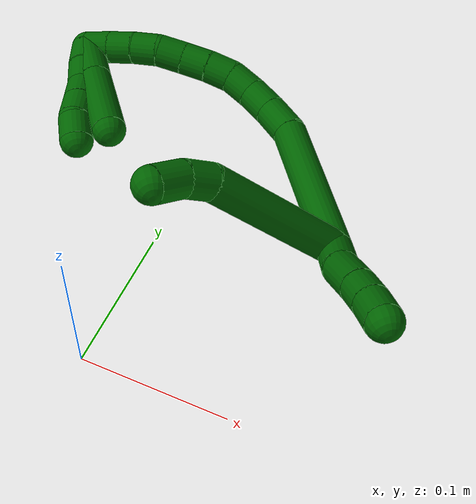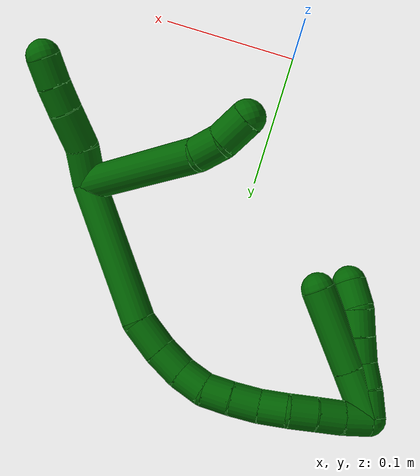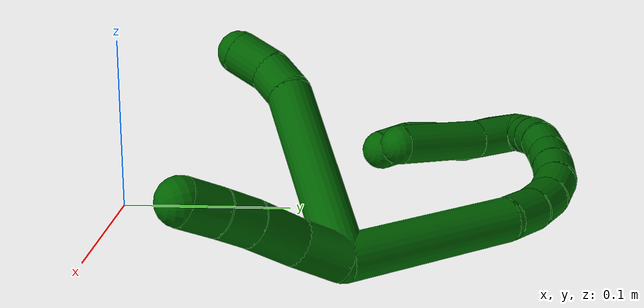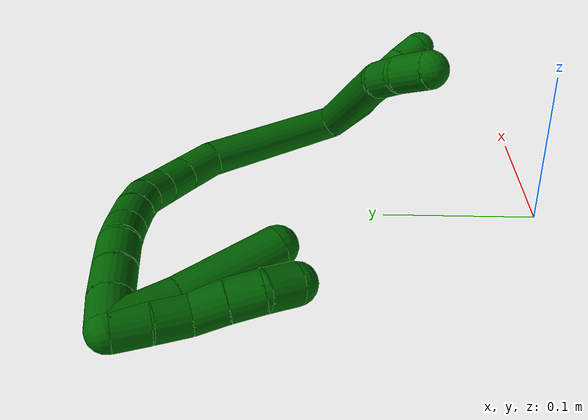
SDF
<sdf version="1.7">
 <world name="default">
  <model name="6">
   <static>0</static>
   <link name="6">
    <collision name="collision-cylinder-e_1_2_8">
     <pose>-0.052342 -0.002921 0.009094 0.310812 -1.3903 -0.259862</pose>
     <geometry><cylinder><radius>0.0125</radius><length>0.106413</length></cylinder></geometry>
     <surface>
      <friction><ode><mu>1.16</mu><mu2>1.16</mu2><slip1>0</slip1><slip2>0</slip2></ode></friction>
      <contact><ode><kp>1e+06</kp><kd>1</kd><max_vel>0</max_vel><min_depth>0.001</min_depth></ode></contact>
     </surface>
    </collision>
    <visual name="visual-cylinder-e_1_2_8">
     <pose>-0.052342 -0.002921 0.009094 0.310812 -1.3903 -0.259862</pose>
     <geometry><cylinder><radius>0.0125</radius><length>0.106413</length></cylinder></geometry>
     <material><ambient>0 0.392157 0.003922 1</ambient></material>
    </visual>
    <collision name="collision-cylinder-e_2_8_9">
     <pose>-0.114614 -0.004176 0.017561 -1.93065 -1.39344 1.75926</pose>
     <geometry><cylinder><radius>0.0125</radius><length>0.020177</length></cylinder></geometry>
     <surface>
      <friction><ode><mu>1.16</mu><mu2>1.16</mu2><slip1>0</slip1><slip2>0</slip2></ode></friction>
      <contact><ode><kp>1e+06</kp><kd>1</kd><max_vel>0</max_vel><min_depth>0.001</min_depth></ode></contact>
     </surface>
    </collision>
    <visual name="visual-cylinder-e_2_8_9">
     <pose>-0.114614 -0.004176 0.017561 -1.93065 -1.39344 1.75926</pose>
     <geometry><cylinder><radius>0.0125</radius><length>0.020177</length></cylinder></geometry>
     <material><ambient>0 0.392157 0.003922 1</ambient></material>
    </visual>
    <collision name="collision-cylinder-e_3_9_6">
     <pose>-0.135205 0.000387 0.013064 -2.49892 -1.14504 2.18814</pose>
     <geometry><cylinder><radius>0.0125</radius><length>0.02341</length></cylinder></geometry>
     <surface>
      <friction><ode><mu>1.16</mu><mu2>1.16</mu2><slip1>0</slip1><slip2>0</slip2></ode></friction>
      <contact><ode><kp>1e+06</kp><kd>1</kd><max_vel>0</max_vel><min_depth>0.001</min_depth></ode></contact>
     </surface>
    </collision>
    <visual name="visual-cylinder-e_3_9_6">
     <pose>-0.135205 0.000387 0.013064 -2.49892 -1.14504 2.18814</pose>
     <geometry><cylinder><radius>0.0125</radius><length>0.02341</length></cylinder></geometry>
     <material><ambient>0 0.392157 0.003922 1</ambient></material>
    </visual>
    <collision name="collision-cylinder-e_1_2_10">
     <pose>-0.005702 -0.003578 -0.012521 2.86325 -0.412745 -1.96224</pose>
     <geometry><cylinder><radius>0.0125</radius><length>0.028432</length></cylinder></geometry>
     <surface>
      <friction><ode><mu>1.16</mu><mu2>1.16</mu2><slip1>0</slip1><slip2>0</slip2></ode></friction>
      <contact><ode><kp>1e+06</kp><kd>1</kd><max_vel>0</max_vel><min_depth>0.001</min_depth></ode></contact>
     </surface>
    </collision>
    <visual name="visual-cylinder-e_1_2_10">
     <pose>-0.005702 -0.003578 -0.012521 2.86325 -0.412745 -1.96224</pose>
     <geometry><cylinder><radius>0.0125</radius><length>0.028432</length></cylinder></geometry>
     <material><ambient>0 0.392157 0.003922 1</ambient></material>
    </visual>
    <collision name="collision-cylinder-e_2_10_11">
     <pose>-0.015234 -0.013719 -0.038088 2.67546 -0.256416 -0.995023</pose>
     <geometry><cylinder><radius>0.0125</radius><length>0.030194</length></cylinder></geometry>
     <surface>
      <friction><ode><mu>1.16</mu><mu2>1.16</mu2><slip1>0</slip1><slip2>0</slip2></ode></friction>
      <contact><ode><kp>1e+06</kp><kd>1</kd><max_vel>0</max_vel><min_depth>0.001</min_depth></ode></contact>
     </surface>
    </collision>
    <visual name="visual-cylinder-e_2_10_11">
     <pose>-0.015234 -0.013719 -0.038088 2.67546 -0.256416 -0.995023</pose>
     <geometry><cylinder><radius>0.0125</radius><length>0.030194</length></cylinder></geometry>
     <material><ambient>0 0.392157 0.003922 1</ambient></material>
    </visual>
    <collision name="collision-cylinder-e_3_11_12">
     <pose>-0.021387 -0.024024 -0.060126 2.74737 -0.234265 -1.06491</pose>
     <geometry><cylinder><radius>0.0125</radius><length>0.020027</length></cylinder></geometry>
     <surface>
      <friction><ode><mu>1.16</mu><mu2>1.16</mu2><slip1>0</slip1><slip2>0</slip2></ode></friction>
      <contact><ode><kp>1e+06</kp><kd>1</kd><max_vel>0</max_vel><min_depth>0.001</min_depth></ode></contact>
     </surface>
    </collision>
    <visual name="visual-cylinder-e_3_11_12">
     <pose>-0.021387 -0.024024 -0.060126 2.74737 -0.234265 -1.06491</pose>
     <geometry><cylinder><radius>0.0125</radius><length>0.020027</length></cylinder></geometry>
     <material><ambient>0 0.392157 0.003922 1</ambient></material>
    </visual>
    <collision name="collision-cylinder-e_4_12_5">
     <pose>-0.026451 -0.031167 -0.078858 2.80552 -0.259537 -1.31147</pose>
     <geometry><cylinder><radius>0.0125</radius><length>0.021346</length></cylinder></geometry>
     <surface>
      <friction><ode><mu>1.16</mu><mu2>1.16</mu2><slip1>0</slip1><slip2>0</slip2></ode></friction>
      <contact><ode><kp>1e+06</kp><kd>1</kd><max_vel>0</max_vel><min_depth>0.001</min_depth></ode></contact>
     </surface>
    </collision>
    <visual name="visual-cylinder-e_4_12_5">
     <pose>-0.026451 -0.031167 -0.078858 2.80552 -0.259537 -1.31147</pose>
     <geometry><cylinder><radius>0.0125</radius><length>0.021346</length></cylinder></geometry>
     <material><ambient>0 0.392157 0.003922 1</ambient></material>
    </visual>
    <collision name="collision-cylinder-e_1_2_13">
     <pose>-0.000413 -0.000345 0.054215 0.006357 -0.007613 -2.4e-05</pose>
     <geometry><cylinder><radius>0.0125</radius><length>0.108436</length></cylinder></geometry>
     <surface>
      <friction><ode><mu>1.16</mu><mu2>1.16</mu2><slip1>0</slip1><slip2>0</slip2></ode></friction>
      <contact><ode><kp>1e+06</kp><kd>1</kd><max_vel>0</max_vel><min_depth>0.001</min_depth></ode></contact>
     </surface>
    </collision>
    <visual name="visual-cylinder-e_1_2_13">
     <pose>-0.000413 -0.000345 0.054215 0.006357 -0.007613 -2.4e-05</pose>
     <geometry><cylinder><radius>0.0125</radius><length>0.108436</length></cylinder></geometry>
     <material><ambient>0 0.392157 0.003922 1</ambient></material>
    </visual>
    <collision name="collision-cylinder-e_2_13_14">
     <pose>-0.003652 0.001907 0.121077 -0.202449 -0.215537 0.021977</pose>
     <geometry><cylinder><radius>0.0125</radius><length>0.026434</length></cylinder></geometry>
     <surface>
      <friction><ode><mu>1.16</mu><mu2>1.16</mu2><slip1>0</slip1><slip2>0</slip2></ode></friction>
      <contact><ode><kp>1e+06</kp><kd>1</kd><max_vel>0</max_vel><min_depth>0.001</min_depth></ode></contact>
     </surface>
    </collision>
    <visual name="visual-cylinder-e_2_13_14">
     <pose>-0.003652 0.001907 0.121077 -0.202449 -0.215537 0.021977</pose>
     <geometry><cylinder><radius>0.0125</radius><length>0.026434</length></cylinder></geometry>
     <material><ambient>0 0.392157 0.003922 1</ambient></material>
    </visual>
    <collision name="collision-cylinder-e_3_14_15">
     <pose>-0.010584 0.006759 0.144085 -0.214432 -0.369429 0.040214</pose>
     <geometry><cylinder><radius>0.0125</radius><length>0.02274</length></cylinder></geometry>
     <surface>
      <friction><ode><mu>1.16</mu><mu2>1.16</mu2><slip1>0</slip1><slip2>0</slip2></ode></friction>
      <contact><ode><kp>1e+06</kp><kd>1</kd><max_vel>0</max_vel><min_depth>0.001</min_depth></ode></contact>
     </surface>
    </collision>
    <visual name="visual-cylinder-e_3_14_15">
     <pose>-0.010584 0.006759 0.144085 -0.214432 -0.369429 0.040214</pose>
     <geometry><cylinder><radius>0.0125</radius><length>0.02274</length></cylinder></geometry>
     <material><ambient>0 0.392157 0.003922 1</ambient></material>
    </visual>
    <collision name="collision-cylinder-e_4_15_16">
     <pose>-0.020531 0.010882 0.162793 -0.220028 -0.599163 0.068211</pose>
     <geometry><cylinder><radius>0.0125</radius><length>0.020716</length></cylinder></geometry>
     <surface>
      <friction><ode><mu>1.16</mu><mu2>1.16</mu2><slip1>0</slip1><slip2>0</slip2></ode></friction>
      <contact><ode><kp>1e+06</kp><kd>1</kd><max_vel>0</max_vel><min_depth>0.001</min_depth></ode></contact>
     </surface>
    </collision>
    <visual name="visual-cylinder-e_4_15_16">
     <pose>-0.020531 0.010882 0.162793 -0.220028 -0.599163 0.068211</pose>
     <geometry><cylinder><radius>0.0125</radius><length>0.020716</length></cylinder></geometry>
     <material><ambient>0 0.392157 0.003922 1</ambient></material>
    </visual>
    <collision name="collision-cylinder-e_5_16_17">
     <pose>-0.033531 0.016299 0.177234 -0.52744 -0.792855 0.22509</pose>
     <geometry><cylinder><radius>0.0125</radius><length>0.020097</length></cylinder></geometry>
     <surface>
      <friction><ode><mu>1.16</mu><mu2>1.16</mu2><slip1>0</slip1><slip2>0</slip2></ode></friction>
      <contact><ode><kp>1e+06</kp><kd>1</kd><max_vel>0</max_vel><min_depth>0.001</min_depth></ode></contact>
     </surface>
    </collision>
    <visual name="visual-cylinder-e_5_16_17">
     <pose>-0.033531 0.016299 0.177234 -0.52744 -0.792855 0.22509</pose>
     <geometry><cylinder><radius>0.0125</radius><length>0.020097</length></cylinder></geometry>
     <material><ambient>0 0.392157 0.003922 1</ambient></material>
    </visual>
    <collision name="collision-cylinder-e_6_17_18">
     <pose>-0.04811 0.02438 0.189285 -0.650375 -0.781022 0.27582</pose>
     <geometry><cylinder><radius>0.0125</radius><length>0.02108</length></cylinder></geometry>
     <surface>
      <friction><ode><mu>1.16</mu><mu2>1.16</mu2><slip1>0</slip1><slip2>0</slip2></ode></friction>
      <contact><ode><kp>1e+06</kp><kd>1</kd><max_vel>0</max_vel><min_depth>0.001</min_depth></ode></contact>
     </surface>
    </collision>
    <visual name="visual-cylinder-e_6_17_18">
     <pose>-0.04811 0.02438 0.189285 -0.650375 -0.781022 0.27582</pose>
     <geometry><cylinder><radius>0.0125</radius><length>0.02108</length></cylinder></geometry>
     <material><ambient>0 0.392157 0.003922 1</ambient></material>
    </visual>
    <collision name="collision-cylinder-e_7_18_19">
     <pose>-0.063527 0.03294 0.200029 -0.699479 -0.90705 0.351873</pose>
     <geometry><cylinder><radius>0.0125</radius><length>0.020305</length></cylinder></geometry>
     <surface>
      <friction><ode><mu>1.16</mu><mu2>1.16</mu2><slip1>0</slip1><slip2>0</slip2></ode></friction>
      <contact><ode><kp>1e+06</kp><kd>1</kd><max_vel>0</max_vel><min_depth>0.001</min_depth></ode></contact>
     </surface>
    </collision>
    <visual name="visual-cylinder-e_7_18_19">
     <pose>-0.063527 0.03294 0.200029 -0.699479 -0.90705 0.351873</pose>
     <geometry><cylinder><radius>0.0125</radius><length>0.020305</length></cylinder></geometry>
     <material><ambient>0 0.392157 0.003922 1</ambient></material>
    </visual>
    <collision name="collision-cylinder-e_8_19_20">
     <pose>-0.077978 0.043056 0.209428 -0.922436 -0.701438 0.359695</pose>
     <geometry><cylinder><radius>0.0125</radius><length>0.020003</length></cylinder></geometry>
     <surface>
      <friction><ode><mu>1.16</mu><mu2>1.16</mu2><slip1>0</slip1><slip2>0</slip2></ode></friction>
      <contact><ode><kp>1e+06</kp><kd>1</kd><max_vel>0</max_vel><min_depth>0.001</min_depth></ode></contact>
     </surface>
    </collision>
    <visual name="visual-cylinder-e_8_19_20">
     <pose>-0.077978 0.043056 0.209428 -0.922436 -0.701438 0.359695</pose>
     <geometry><cylinder><radius>0.0125</radius><length>0.020003</length></cylinder></geometry>
     <material><ambient>0 0.392157 0.003922 1</ambient></material>
    </visual>
    <collision name="collision-cylinder-e_9_20_21">
     <pose>-0.090162 0.055931 0.218726 -0.966554 -0.607386 0.326002</pose>
     <geometry><cylinder><radius>0.0125</radius><length>0.020079</length></cylinder></geometry>
     <surface>
      <friction><ode><mu>1.16</mu><mu2>1.16</mu2><slip1>0</slip1><slip2>0</slip2></ode></friction>
      <contact><ode><kp>1e+06</kp><kd>1</kd><max_vel>0</max_vel><min_depth>0.001</min_depth></ode></contact>
     </surface>
    </collision>
    <visual name="visual-cylinder-e_9_20_21">
     <pose>-0.090162 0.055931 0.218726 -0.966554 -0.607386 0.326002</pose>
     <geometry><cylinder><radius>0.0125</radius><length>0.020079</length></cylinder></geometry>
     <material><ambient>0 0.392157 0.003922 1</ambient></material>
    </visual>
    <collision name="collision-cylinder-e_10_21_1">
     <pose>-0.102087 0.069593 0.227337 -1.05199 -0.663774 0.394939</pose>
     <geometry><cylinder><radius>0.0125</radius><length>0.02011</length></cylinder></geometry>
     <surface>
      <friction><ode><mu>1.16</mu><mu2>1.16</mu2><slip1>0</slip1><slip2>0</slip2></ode></friction>
      <contact><ode><kp>1e+06</kp><kd>1</kd><max_vel>0</max_vel><min_depth>0.001</min_depth></ode></contact>
     </surface>
    </collision>
    <visual name="visual-cylinder-e_10_21_1">
     <pose>-0.102087 0.069593 0.227337 -1.05199 -0.663774 0.394939</pose>
     <geometry><cylinder><radius>0.0125</radius><length>0.02011</length></cylinder></geometry>
     <material><ambient>0 0.392157 0.003922 1</ambient></material>
    </visual>
    <collision name="collision-cylinder-e_1_1_22">
     <pose>-0.108183 0.07629 0.212695 3.13189 0.005315 1.00199</pose>
     <geometry><cylinder><radius>0.0125</radius><length>0.03714</length></cylinder></geometry>
     <surface>
      <friction><ode><mu>1.16</mu><mu2>1.16</mu2><slip1>0</slip1><slip2>0</slip2></ode></friction>
      <contact><ode><kp>1e+06</kp><kd>1</kd><max_vel>0</max_vel><min_depth>0.001</min_depth></ode></contact>
     </surface>
    </collision>
    <visual name="visual-cylinder-e_1_1_22">
     <pose>-0.108183 0.07629 0.212695 3.13189 0.005315 1.00199</pose>
     <geometry><cylinder><radius>0.0125</radius><length>0.03714</length></cylinder></geometry>
     <material><ambient>0 0.392157 0.003922 1</ambient></material>
    </visual>
    <collision name="collision-cylinder-e_2_22_4">
     <pose>-0.109317 0.073242 0.162852 3.05013 -0.039237 -0.810111</pose>
     <geometry><cylinder><radius>0.0125</radius><length>0.06286</length></cylinder></geometry>
     <surface>
      <friction><ode><mu>1.16</mu><mu2>1.16</mu2><slip1>0</slip1><slip2>0</slip2></ode></friction>
      <contact><ode><kp>1e+06</kp><kd>1</kd><max_vel>0</max_vel><min_depth>0.001</min_depth></ode></contact>
     </surface>
    </collision>
    <visual name="visual-cylinder-e_2_22_4">
     <pose>-0.109317 0.073242 0.162852 3.05013 -0.039237 -0.810111</pose>
     <geometry><cylinder><radius>0.0125</radius><length>0.06286</length></cylinder></geometry>
     <material><ambient>0 0.392157 0.003922 1</ambient></material>
    </visual>
    <collision name="collision-cylinder-e_1_1_23">
     <pose>-0.110108 0.078543 0.221653 -2.92921 -0.18368 1.42517</pose>
     <geometry><cylinder><radius>0.0125</radius><length>0.02</length></cylinder></geometry>
     <surface>
      <friction><ode><mu>1.16</mu><mu2>1.16</mu2><slip1>0</slip1><slip2>0</slip2></ode></friction>
      <contact><ode><kp>1e+06</kp><kd>1</kd><max_vel>0</max_vel><min_depth>0.001</min_depth></ode></contact>
     </surface>
    </collision>
    <visual name="visual-cylinder-e_1_1_23">
     <pose>-0.110108 0.078543 0.221653 -2.92921 -0.18368 1.42517</pose>
     <geometry><cylinder><radius>0.0125</radius><length>0.02</length></cylinder></geometry>
     <material><ambient>0 0.392157 0.003922 1</ambient></material>
    </visual>
    <collision name="collision-cylinder-e_2_23_24">
     <pose>-0.112683 0.082648 0.20228 -2.93632 -0.074942 0.698129</pose>
     <geometry><cylinder><radius>0.0125</radius><length>0.02</length></cylinder></geometry>
     <surface>
      <friction><ode><mu>1.16</mu><mu2>1.16</mu2><slip1>0</slip1><slip2>0</slip2></ode></friction>
      <contact><ode><kp>1e+06</kp><kd>1</kd><max_vel>0</max_vel><min_depth>0.001</min_depth></ode></contact>
     </surface>
    </collision>
    <visual name="visual-cylinder-e_2_23_24">
     <pose>-0.112683 0.082648 0.20228 -2.93632 -0.074942 0.698129</pose>
     <geometry><cylinder><radius>0.0125</radius><length>0.02</length></cylinder></geometry>
     <material><ambient>0 0.392157 0.003922 1</ambient></material>
    </visual>
    <collision name="collision-cylinder-e_3_24_25">
     <pose>-0.116323 0.085454 0.182975 -3.06072 -0.293335 2.60694</pose>
     <geometry><cylinder><radius>0.0125</radius><length>0.02</length></cylinder></geometry>
     <surface>
      <friction><ode><mu>1.16</mu><mu2>1.16</mu2><slip1>0</slip1><slip2>0</slip2></ode></friction>
      <contact><ode><kp>1e+06</kp><kd>1</kd><max_vel>0</max_vel><min_depth>0.001</min_depth></ode></contact>
     </surface>
    </collision>
    <visual name="visual-cylinder-e_3_24_25">
     <pose>-0.116323 0.085454 0.182975 -3.06072 -0.293335 2.60694</pose>
     <geometry><cylinder><radius>0.0125</radius><length>0.02</length></cylinder></geometry>
     <material><ambient>0 0.392157 0.003922 1</ambient></material>
    </visual>
    <collision name="collision-cylinder-e_4_25_26">
     <pose>-0.12201 0.087468 0.163913 -3.01203 -0.283272 2.28764</pose>
     <geometry><cylinder><radius>0.0125</radius><length>0.02</length></cylinder></geometry>
     <surface>
      <friction><ode><mu>1.16</mu><mu2>1.16</mu2><slip1>0</slip1><slip2>0</slip2></ode></friction>
      <contact><ode><kp>1e+06</kp><kd>1</kd><max_vel>0</max_vel><min_depth>0.001</min_depth></ode></contact>
     </surface>
    </collision>
    <visual name="visual-cylinder-e_4_25_26">
     <pose>-0.12201 0.087468 0.163913 -3.01203 -0.283272 2.28764</pose>
     <geometry><cylinder><radius>0.0125</radius><length>0.02</length></cylinder></geometry>
     <material><ambient>0 0.392157 0.003922 1</ambient></material>
    </visual>
    <collision name="collision-cylinder-e_5_26_3">
     <pose>-0.124565 0.090565 0.144569 -2.95478 0.023975 -0.254552</pose>
     <geometry><cylinder><radius>0.0125</radius><length>0.02</length></cylinder></geometry>
     <surface>
      <friction><ode><mu>1.16</mu><mu2>1.16</mu2><slip1>0</slip1><slip2>0</slip2></ode></friction>
      <contact><ode><kp>1e+06</kp><kd>1</kd><max_vel>0</max_vel><min_depth>0.001</min_depth></ode></contact>
     </surface>
    </collision>
    <visual name="visual-cylinder-e_5_26_3">
     <pose>-0.124565 0.090565 0.144569 -2.95478 0.023975 -0.254552</pose>
     <geometry><cylinder><radius>0.0125</radius><length>0.02</length></cylinder></geometry>
     <material><ambient>0 0.392157 0.003922 1</ambient></material>
    </visual>
    <collision name="collision-sphere-3">
     <pose>-0.124325 0.092422 0.134746 0 -0 0</pose>
     <geometry><sphere><radius>0.0125</radius></sphere></geometry>
     <surface>
      <friction><ode><mu>1.16</mu><mu2>1.16</mu2><slip1>0</slip1><slip2>0</slip2></ode></friction>
      <contact><ode><kp>1e+06</kp><kd>1</kd><max_vel>0</max_vel><min_depth>0.001</min_depth></ode></contact>
     </surface>
    </collision>
    <visual name="visual-sphere-3">
     <pose>-0.124325 0.092422 0.134746 0 -0 0</pose>
     <geometry><sphere><radius>0.0125</radius></sphere></geometry>
     <material><ambient>0 0.392157 0.003922 1</ambient></material>
    </visual>
    <collision name="collision-sphere-26">
     <pose>-0.124805 0.088708 0.154392 0 -0 0</pose>
     <geometry><sphere><radius>0.0125</radius></sphere></geometry>
     <surface>
      <friction><ode><mu>1.16</mu><mu2>1.16</mu2><slip1>0</slip1><slip2>0</slip2></ode></friction>
      <contact><ode><kp>1e+06</kp><kd>1</kd><max_vel>0</max_vel><min_depth>0.001</min_depth></ode></contact>
     </surface>
    </collision>
    <visual name="visual-sphere-26">
     <pose>-0.124805 0.088708 0.154392 0 -0 0</pose>
     <geometry><sphere><radius>0.0125</radius></sphere></geometry>
     <material><ambient>0 0.392157 0.003922 1</ambient></material>
    </visual>
    <collision name="collision-sphere-25">
     <pose>-0.119215 0.086227 0.173434 0 -0 0</pose>
     <geometry><sphere><radius>0.0125</radius></sphere></geometry>
     <surface>
      <friction><ode><mu>1.16</mu><mu2>1.16</mu2><slip1>0</slip1><slip2>0</slip2></ode></friction>
      <contact><ode><kp>1e+06</kp><kd>1</kd><max_vel>0</max_vel><min_depth>0.001</min_depth></ode></contact>
     </surface>
    </collision>
    <visual name="visual-sphere-25">
     <pose>-0.119215 0.086227 0.173434 0 -0 0</pose>
     <geometry><sphere><radius>0.0125</radius></sphere></geometry>
     <material><ambient>0 0.392157 0.003922 1</ambient></material>
    </visual>
    <collision name="collision-sphere-24">
     <pose>-0.113432 0.084681 0.192517 0 -0 0</pose>
     <geometry><sphere><radius>0.0125</radius></sphere></geometry>
     <surface>
      <friction><ode><mu>1.16</mu><mu2>1.16</mu2><slip1>0</slip1><slip2>0</slip2></ode></friction>
      <contact><ode><kp>1e+06</kp><kd>1</kd><max_vel>0</max_vel><min_depth>0.001</min_depth></ode></contact>
     </surface>
    </collision>
    <visual name="visual-sphere-24">
     <pose>-0.113432 0.084681 0.192517 0 -0 0</pose>
     <geometry><sphere><radius>0.0125</radius></sphere></geometry>
     <material><ambient>0 0.392157 0.003922 1</ambient></material>
    </visual>
    <collision name="collision-sphere-23">
     <pose>-0.111934 0.080615 0.212042 0 -0 0</pose>
     <geometry><sphere><radius>0.0125</radius></sphere></geometry>
     <surface>
      <friction><ode><mu>1.16</mu><mu2>1.16</mu2><slip1>0</slip1><slip2>0</slip2></ode></friction>
      <contact><ode><kp>1e+06</kp><kd>1</kd><max_vel>0</max_vel><min_depth>0.001</min_depth></ode></contact>
     </surface>
    </collision>
    <visual name="visual-sphere-23">
     <pose>-0.111934 0.080615 0.212042 0 -0 0</pose>
     <geometry><sphere><radius>0.0125</radius></sphere></geometry>
     <material><ambient>0 0.392157 0.003922 1</ambient></material>
    </visual>
    <collision name="collision-sphere-4">
     <pose>-0.11055 0.070373 0.131577 0 -0 0</pose>
     <geometry><sphere><radius>0.0125</radius></sphere></geometry>
     <surface>
      <friction><ode><mu>1.16</mu><mu2>1.16</mu2><slip1>0</slip1><slip2>0</slip2></ode></friction>
      <contact><ode><kp>1e+06</kp><kd>1</kd><max_vel>0</max_vel><min_depth>0.001</min_depth></ode></contact>
     </surface>
    </collision>
    <visual name="visual-sphere-4">
     <pose>-0.11055 0.070373 0.131577 0 -0 0</pose>
     <geometry><sphere><radius>0.0125</radius></sphere></geometry>
     <material><ambient>0 0.392157 0.003922 1</ambient></material>
    </visual>
    <collision name="collision-sphere-22">
     <pose>-0.108084 0.07611 0.194126 0 -0 0</pose>
     <geometry><sphere><radius>0.0125</radius></sphere></geometry>
     <surface>
      <friction><ode><mu>1.16</mu><mu2>1.16</mu2><slip1>0</slip1><slip2>0</slip2></ode></friction>
      <contact><ode><kp>1e+06</kp><kd>1</kd><max_vel>0</max_vel><min_depth>0.001</min_depth></ode></contact>
     </surface>
    </collision>
    <visual name="visual-sphere-22">
     <pose>-0.108084 0.07611 0.194126 0 -0 0</pose>
     <geometry><sphere><radius>0.0125</radius></sphere></geometry>
     <material><ambient>0 0.392157 0.003922 1</ambient></material>
    </visual>
    <collision name="collision-sphere-1">
     <pose>-0.108281 0.07647 0.231264 0 -0 0</pose>
     <geometry><sphere><radius>0.0125</radius></sphere></geometry>
     <surface>
      <friction><ode><mu>1.16</mu><mu2>1.16</mu2><slip1>0</slip1><slip2>0</slip2></ode></friction>
      <contact><ode><kp>1e+06</kp><kd>1</kd><max_vel>0</max_vel><min_depth>0.001</min_depth></ode></contact>
     </surface>
    </collision>
    <visual name="visual-sphere-1">
     <pose>-0.108281 0.07647 0.231264 0 -0 0</pose>
     <geometry><sphere><radius>0.0125</radius></sphere></geometry>
     <material><ambient>0 0.392157 0.003922 1</ambient></material>
    </visual>
    <collision name="collision-sphere-21">
     <pose>-0.095892 0.062715 0.22341 0 -0 0</pose>
     <geometry><sphere><radius>0.0125</radius></sphere></geometry>
     <surface>
      <friction><ode><mu>1.16</mu><mu2>1.16</mu2><slip1>0</slip1><slip2>0</slip2></ode></friction>
      <contact><ode><kp>1e+06</kp><kd>1</kd><max_vel>0</max_vel><min_depth>0.001</min_depth></ode></contact>
     </surface>
    </collision>
    <visual name="visual-sphere-21">
     <pose>-0.095892 0.062715 0.22341 0 -0 0</pose>
     <geometry><sphere><radius>0.0125</radius></sphere></geometry>
     <material><ambient>0 0.392157 0.003922 1</ambient></material>
    </visual>
    <collision name="collision-sphere-11">
     <pose>-0.019063 -0.020283 -0.051134 0 -0 0</pose>
     <geometry><sphere><radius>0.0125</radius></sphere></geometry>
     <surface>
      <friction><ode><mu>1.16</mu><mu2>1.16</mu2><slip1>0</slip1><slip2>0</slip2></ode></friction>
      <contact><ode><kp>1e+06</kp><kd>1</kd><max_vel>0</max_vel><min_depth>0.001</min_depth></ode></contact>
     </surface>
    </collision>
    <visual name="visual-sphere-11">
     <pose>-0.019063 -0.020283 -0.051134 0 -0 0</pose>
     <geometry><sphere><radius>0.0125</radius></sphere></geometry>
     <material><ambient>0 0.392157 0.003922 1</ambient></material>
    </visual>
    <collision name="collision-sphere-10">
     <pose>-0.011405 -0.007156 -0.025042 0 -0 0</pose>
     <geometry><sphere><radius>0.0125</radius></sphere></geometry>
     <surface>
      <friction><ode><mu>1.16</mu><mu2>1.16</mu2><slip1>0</slip1><slip2>0</slip2></ode></friction>
      <contact><ode><kp>1e+06</kp><kd>1</kd><max_vel>0</max_vel><min_depth>0.001</min_depth></ode></contact>
     </surface>
    </collision>
    <visual name="visual-sphere-10">
     <pose>-0.011405 -0.007156 -0.025042 0 -0 0</pose>
     <geometry><sphere><radius>0.0125</radius></sphere></geometry>
     <material><ambient>0 0.392157 0.003922 1</ambient></material>
    </visual>
    <collision name="collision-sphere-6">
     <pose>-0.145865 0.003284 0.009194 0 -0 0</pose>
     <geometry><sphere><radius>0.0125</radius></sphere></geometry>
     <surface>
      <friction><ode><mu>1.16</mu><mu2>1.16</mu2><slip1>0</slip1><slip2>0</slip2></ode></friction>
      <contact><ode><kp>1e+06</kp><kd>1</kd><max_vel>0</max_vel><min_depth>0.001</min_depth></ode></contact>
     </surface>
    </collision>
    <visual name="visual-sphere-6">
     <pose>-0.145865 0.003284 0.009194 0 -0 0</pose>
     <geometry><sphere><radius>0.0125</radius></sphere></geometry>
     <material><ambient>0 0.392157 0.003922 1</ambient></material>
    </visual>
    <collision name="collision-sphere-9">
     <pose>-0.124545 -0.00251 0.016934 0 -0 0</pose>
     <geometry><sphere><radius>0.0125</radius></sphere></geometry>
     <surface>
      <friction><ode><mu>1.16</mu><mu2>1.16</mu2><slip1>0</slip1><slip2>0</slip2></ode></friction>
      <contact><ode><kp>1e+06</kp><kd>1</kd><max_vel>0</max_vel><min_depth>0.001</min_depth></ode></contact>
     </surface>
    </collision>
    <visual name="visual-sphere-9">
     <pose>-0.124545 -0.00251 0.016934 0 -0 0</pose>
     <geometry><sphere><radius>0.0125</radius></sphere></geometry>
     <material><ambient>0 0.392157 0.003922 1</ambient></material>
    </visual>
    <collision name="collision-sphere-2">
     <geometry><sphere><radius>0.0125</radius></sphere></geometry>
     <surface>
      <friction><ode><mu>1.16</mu><mu2>1.16</mu2><slip1>0</slip1><slip2>0</slip2></ode></friction>
      <contact><ode><kp>1e+06</kp><kd>1</kd><max_vel>0</max_vel><min_depth>0.001</min_depth></ode></contact>
     </surface>
    </collision>
    <visual name="visual-sphere-2">
     <geometry><sphere><radius>0.0125</radius></sphere></geometry>
     <material><ambient>0 0.392157 0.003922 1</ambient></material>
    </visual>
    <collision name="collision-sphere-19">
     <pose>-0.071524 0.036967 0.204815 0 -0 0</pose>
     <geometry><sphere><radius>0.0125</radius></sphere></geometry>
     <surface>
      <friction><ode><mu>1.16</mu><mu2>1.16</mu2><slip1>0</slip1><slip2>0</slip2></ode></friction>
      <contact><ode><kp>1e+06</kp><kd>1</kd><max_vel>0</max_vel><min_depth>0.001</min_depth></ode></contact>
     </surface>
    </collision>
    <visual name="visual-sphere-19">
     <pose>-0.071524 0.036967 0.204815 0 -0 0</pose>
     <geometry><sphere><radius>0.0125</radius></sphere></geometry>
     <material><ambient>0 0.392157 0.003922 1</ambient></material>
    </visual>
    <collision name="collision-sphere-8">
     <pose>-0.104684 -0.005842 0.018188 0 -0 0</pose>
     <geometry><sphere><radius>0.0125</radius></sphere></geometry>
     <surface>
      <friction><ode><mu>1.16</mu><mu2>1.16</mu2><slip1>0</slip1><slip2>0</slip2></ode></friction>
      <contact><ode><kp>1e+06</kp><kd>1</kd><max_vel>0</max_vel><min_depth>0.001</min_depth></ode></contact>
     </surface>
    </collision>
    <visual name="visual-sphere-8">
     <pose>-0.104684 -0.005842 0.018188 0 -0 0</pose>
     <geometry><sphere><radius>0.0125</radius></sphere></geometry>
     <material><ambient>0 0.392157 0.003922 1</ambient></material>
    </visual>
    <collision name="collision-sphere-12">
     <pose>-0.023711 -0.027765 -0.069119 0 -0 0</pose>
     <geometry><sphere><radius>0.0125</radius></sphere></geometry>
     <surface>
      <friction><ode><mu>1.16</mu><mu2>1.16</mu2><slip1>0</slip1><slip2>0</slip2></ode></friction>
      <contact><ode><kp>1e+06</kp><kd>1</kd><max_vel>0</max_vel><min_depth>0.001</min_depth></ode></contact>
     </surface>
    </collision>
    <visual name="visual-sphere-12">
     <pose>-0.023711 -0.027765 -0.069119 0 -0 0</pose>
     <geometry><sphere><radius>0.0125</radius></sphere></geometry>
     <material><ambient>0 0.392157 0.003922 1</ambient></material>
    </visual>
    <collision name="collision-sphere-5">
     <pose>-0.02919 -0.034569 -0.088596 0 -0 0</pose>
     <geometry><sphere><radius>0.0125</radius></sphere></geometry>
     <surface>
      <friction><ode><mu>1.16</mu><mu2>1.16</mu2><slip1>0</slip1><slip2>0</slip2></ode></friction>
      <contact><ode><kp>1e+06</kp><kd>1</kd><max_vel>0</max_vel><min_depth>0.001</min_depth></ode></contact>
     </surface>
    </collision>
    <visual name="visual-sphere-5">
     <pose>-0.02919 -0.034569 -0.088596 0 -0 0</pose>
     <geometry><sphere><radius>0.0125</radius></sphere></geometry>
     <material><ambient>0 0.392157 0.003922 1</ambient></material>
    </visual>
    <collision name="collision-sphere-13">
     <pose>-0.000825 -0.000689 0.10843 0 -0 0</pose>
     <geometry><sphere><radius>0.0125</radius></sphere></geometry>
     <surface>
      <friction><ode><mu>1.16</mu><mu2>1.16</mu2><slip1>0</slip1><slip2>0</slip2></ode></friction>
      <contact><ode><kp>1e+06</kp><kd>1</kd><max_vel>0</max_vel><min_depth>0.001</min_depth></ode></contact>
     </surface>
    </collision>
    <visual name="visual-sphere-13">
     <pose>-0.000825 -0.000689 0.10843 0 -0 0</pose>
     <geometry><sphere><radius>0.0125</radius></sphere></geometry>
     <material><ambient>0 0.392157 0.003922 1</ambient></material>
    </visual>
    <collision name="collision-sphere-14">
     <pose>-0.006479 0.004503 0.133725 0 -0 0</pose>
     <geometry><sphere><radius>0.0125</radius></sphere></geometry>
     <surface>
      <friction><ode><mu>1.16</mu><mu2>1.16</mu2><slip1>0</slip1><slip2>0</slip2></ode></friction>
      <contact><ode><kp>1e+06</kp><kd>1</kd><max_vel>0</max_vel><min_depth>0.001</min_depth></ode></contact>
     </surface>
    </collision>
    <visual name="visual-sphere-14">
     <pose>-0.006479 0.004503 0.133725 0 -0 0</pose>
     <geometry><sphere><radius>0.0125</radius></sphere></geometry>
     <material><ambient>0 0.392157 0.003922 1</ambient></material>
    </visual>
    <collision name="collision-sphere-15">
     <pose>-0.01469 0.009015 0.154445 0 -0 0</pose>
     <geometry><sphere><radius>0.0125</radius></sphere></geometry>
     <surface>
      <friction><ode><mu>1.16</mu><mu2>1.16</mu2><slip1>0</slip1><slip2>0</slip2></ode></friction>
      <contact><ode><kp>1e+06</kp><kd>1</kd><max_vel>0</max_vel><min_depth>0.001</min_depth></ode></contact>
     </surface>
    </collision>
    <visual name="visual-sphere-15">
     <pose>-0.01469 0.009015 0.154445 0 -0 0</pose>
     <geometry><sphere><radius>0.0125</radius></sphere></geometry>
     <material><ambient>0 0.392157 0.003922 1</ambient></material>
    </visual>
    <collision name="collision-sphere-16">
     <pose>-0.026373 0.012749 0.17114 0 -0 0</pose>
     <geometry><sphere><radius>0.0125</radius></sphere></geometry>
     <surface>
      <friction><ode><mu>1.16</mu><mu2>1.16</mu2><slip1>0</slip1><slip2>0</slip2></ode></friction>
      <contact><ode><kp>1e+06</kp><kd>1</kd><max_vel>0</max_vel><min_depth>0.001</min_depth></ode></contact>
     </surface>
    </collision>
    <visual name="visual-sphere-16">
     <pose>-0.026373 0.012749 0.17114 0 -0 0</pose>
     <geometry><sphere><radius>0.0125</radius></sphere></geometry>
     <material><ambient>0 0.392157 0.003922 1</ambient></material>
    </visual>
    <collision name="collision-sphere-17">
     <pose>-0.04069 0.019848 0.183328 0 -0 0</pose>
     <geometry><sphere><radius>0.0125</radius></sphere></geometry>
     <surface>
      <friction><ode><mu>1.16</mu><mu2>1.16</mu2><slip1>0</slip1><slip2>0</slip2></ode></friction>
      <contact><ode><kp>1e+06</kp><kd>1</kd><max_vel>0</max_vel><min_depth>0.001</min_depth></ode></contact>
     </surface>
    </collision>
    <visual name="visual-sphere-17">
     <pose>-0.04069 0.019848 0.183328 0 -0 0</pose>
     <geometry><sphere><radius>0.0125</radius></sphere></geometry>
     <material><ambient>0 0.392157 0.003922 1</ambient></material>
    </visual>
    <collision name="collision-sphere-18">
     <pose>-0.05553 0.028913 0.195243 0 -0 0</pose>
     <geometry><sphere><radius>0.0125</radius></sphere></geometry>
     <surface>
      <friction><ode><mu>1.16</mu><mu2>1.16</mu2><slip1>0</slip1><slip2>0</slip2></ode></friction>
      <contact><ode><kp>1e+06</kp><kd>1</kd><max_vel>0</max_vel><min_depth>0.001</min_depth></ode></contact>
     </surface>
    </collision>
    <visual name="visual-sphere-18">
     <pose>-0.05553 0.028913 0.195243 0 -0 0</pose>
     <geometry><sphere><radius>0.0125</radius></sphere></geometry>
     <material><ambient>0 0.392157 0.003922 1</ambient></material>
    </visual>
    <collision name="collision-sphere-20">
     <pose>-0.084432 0.049146 0.214042 0 -0 0</pose>
     <geometry><sphere><radius>0.0125</radius></sphere></geometry>
     <surface>
      <friction><ode><mu>1.16</mu><mu2>1.16</mu2><slip1>0</slip1><slip2>0</slip2></ode></friction>
      <contact><ode><kp>1e+06</kp><kd>1</kd><max_vel>0</max_vel><min_depth>0.001</min_depth></ode></contact>
     </surface>
    </collision>
    <visual name="visual-sphere-20">
     <pose>-0.084432 0.049146 0.214042 0 -0 0</pose>
     <geometry><sphere><radius>0.0125</radius></sphere></geometry>
     <material><ambient>0 0.392157 0.003922 1</ambient></material>
    </visual>
    <inertial>
     <pose>-0.059299 0.025558 0.098898 0 -0 0</pose>
     <mass>0.75</mass>
     <inertia>
      <ixx>0.00012</ixx>
      <ixy>0</ixy>
      <ixz>0</ixz>
      <iyy>0.000197</iyy>
      <iyz>0</iyz>
      <izz>0.000121</izz>
     </inertia>
    </inertial>
   </link>
   <pose>0.116706 0.138479 0.011621 -1.57464 0.650184 0.650521</pose>
  </model>
 </world>
</sdf>
